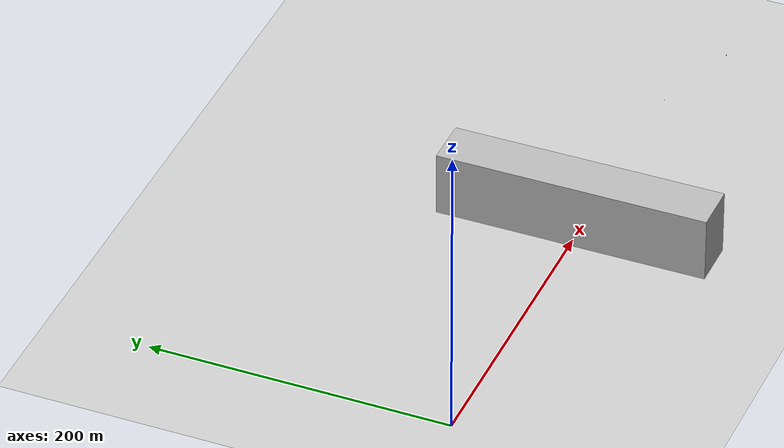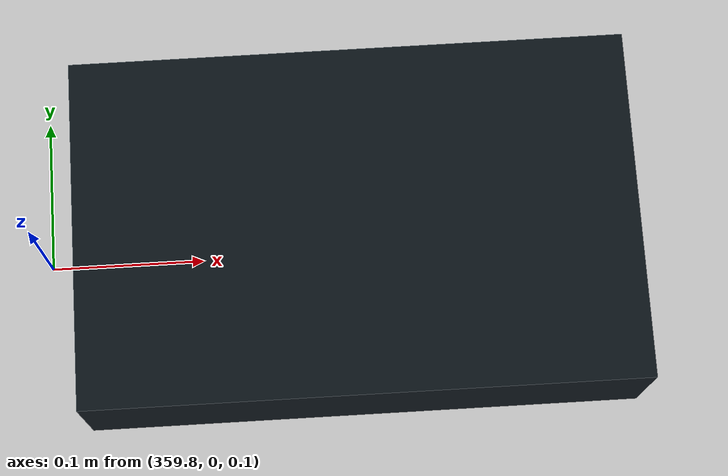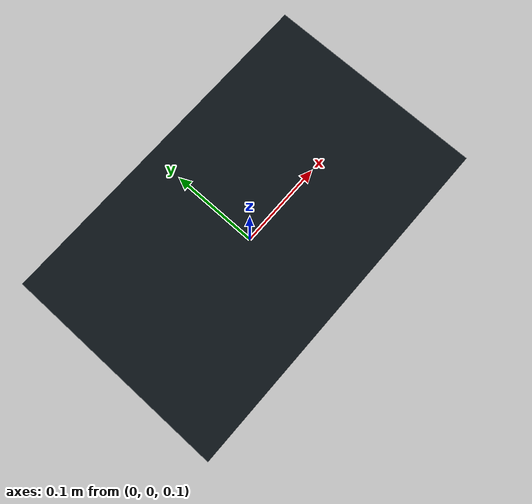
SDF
<?xml version="1.0"?>
<sdf version="1.10">
  <world name="jneo_communication_partition">
    <gravity>0 0 -9.80665</gravity>
    <scene>
      <ambient>0.36 0.38 0.40 1</ambient>
      <background>0.63 0.68 0.73 1</background>
      <shadows>true</shadows>
    </scene>
    <model name="terrain">
      <static>true</static>
      <link name="ground">
        <collision name="collision"><geometry><plane><normal>0 0 1</normal><size>900 260</size></plane></geometry></collision>
        <visual name="visual"><geometry><plane><normal>0 0 1</normal><size>900 260</size></plane></geometry></visual>
      </link>
    </model>
    <model name="partition_ridge">
      <pose>210 0 22 0 0 0</pose>
      <static>true</static>
      <link name="ridge">
        <collision name="collision"><geometry><box><size>32 180 44</size></box></geometry></collision>
        <visual name="visual"><geometry><box><size>32 180 44</size></box></geometry></visual>
      </link>
    </model>
    <include><name>uav_1</name><pose>0 0 0.15 0 0 0</pose><uri>model://jneo-fpv-copter</uri></include>
    <include><name>uav_2</name><pose>180 0 0.15 0 0 0</pose><uri>model://jneo-fpv-copter</uri></include>
    <include><name>uav_3</name><pose>360 0 0.15 0 0 0</pose><uri>model://jneo-fpv-copter</uri></include>
    <include><name>target_1</name><pose>420 -20 1.0 0 0 3.14159</pose><uri>model://virtual-observation-target</uri></include>
    <!-- Evaluator-only metadata: initial partition blocks uav_1 to uav_2 until scenario clears it. -->
  </world>
</sdf>

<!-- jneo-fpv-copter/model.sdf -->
<sdf version="1.10">
  <model name="jneo-fpv-copter">
    <pose>0 0 0.15 0 0 0</pose>
    <link name="base_link">
      <inertial>
        <mass>1.45</mass>
        <inertia>
          <ixx>0.029</ixx>
          <iyy>0.029</iyy>
          <izz>0.055</izz>
        </inertia>
      </inertial>
      <collision name="body_collision">
        <geometry>
          <box>
            <size>0.35 0.22 0.08</size>
          </box>
        </geometry>
      </collision>
      <visual name="body_visual">
        <geometry>
          <box>
            <size>0.35 0.22 0.08</size>
          </box>
        </geometry>
        <material>
          <ambient>0.05 0.08 0.10 1</ambient>
          <diffuse>0.05 0.08 0.10 1</diffuse>
        </material>
      </visual>
      <sensor name="fpv_camera" type="camera">
        <pose>0.22 0 0.03 0 0 0</pose>
        <camera>
          <horizontal_fov>1.22173</horizontal_fov>
          <image>
            <width>960</width>
            <height>540</height>
            <format>R8G8B8</format>
          </image>
          <clip>
            <near>0.05</near>
            <far>500</far>
          </clip>
        </camera>
        <always_on>true</always_on>
        <update_rate>30</update_rate>
        <topic>fpv/image</topic>
      </sensor>
      <sensor name="imu" type="imu">
        <always_on>true</always_on>
        <update_rate>200</update_rate>
        <topic>imu</topic>
      </sensor>
      <sensor name="range" type="gpu_lidar">
        <pose>0.18 0 -0.02 0 0 0</pose>
        <topic>range/scan</topic>
        <update_rate>15</update_rate>
        <lidar>
          <scan>
            <horizontal>
              <samples>64</samples>
              <min_angle>-0.6</min_angle>
              <max_angle>0.6</max_angle>
            </horizontal>
          </scan>
          <range>
            <min>0.2</min>
            <max>30.0</max>
          </range>
        </lidar>
      </sensor>
    </link>
    <plugin filename="ArduPilotPlugin" name="ardupilot_gazebo::ArduPilotPlugin">
      <fdm_addr>127.0.0.1</fdm_addr>
      <fdm_port_in>9002</fdm_port_in>
      <fdm_port_out>9003</fdm_port_out>
      <modelXYZToAirplaneXForwardZDown>0 0 0 3.141593 0 0</modelXYZToAirplaneXForwardZDown>
      <gazeboXYZToNED>0 0 0 3.141593 0 1.570796</gazeboXYZToNED>
    </plugin>
  </model>
</sdf>

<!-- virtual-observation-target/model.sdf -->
<sdf version="1.10">
  <model name="virtual-observation-target">
    <static>true</static>
    <link name="target_panel">
      <visual name="target_pattern">
        <geometry>
          <box>
            <size>1.2 0.08 1.2</size>
          </box>
        </geometry>
        <material>
          <ambient>0.0 0.85 0.15 1</ambient>
          <diffuse>0.0 0.85 0.15 1</diffuse>
          <specular>0.8 0.8 0.8 1</specular>
        </material>
      </visual>
      <collision name="target_collision">
        <geometry>
          <box>
            <size>1.2 0.08 1.2</size>
          </box>
        </geometry>
      </collision>
    </link>
  </model>
</sdf>
